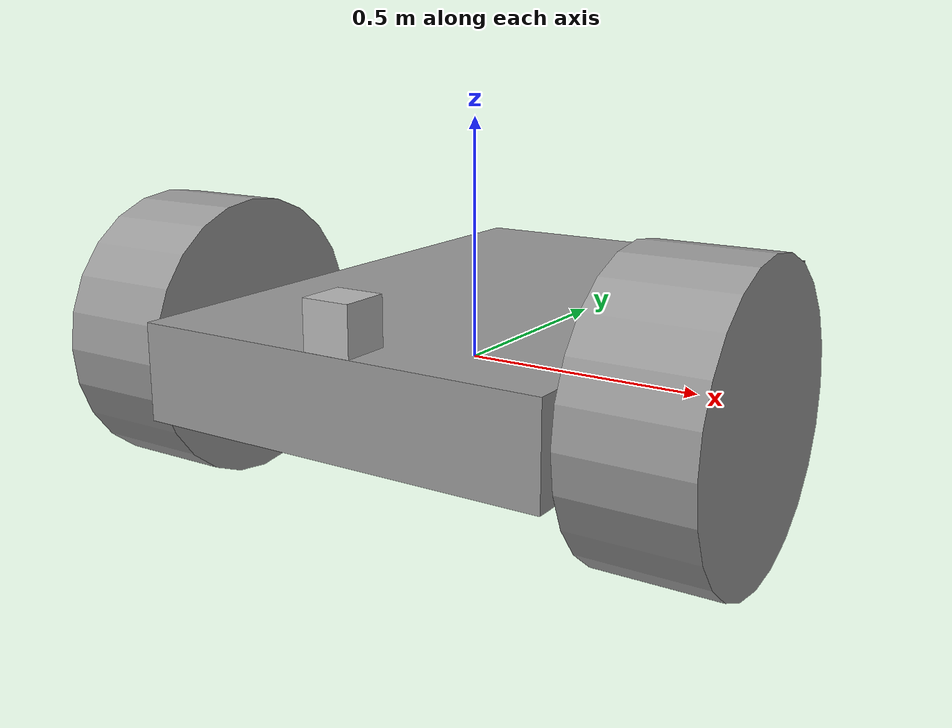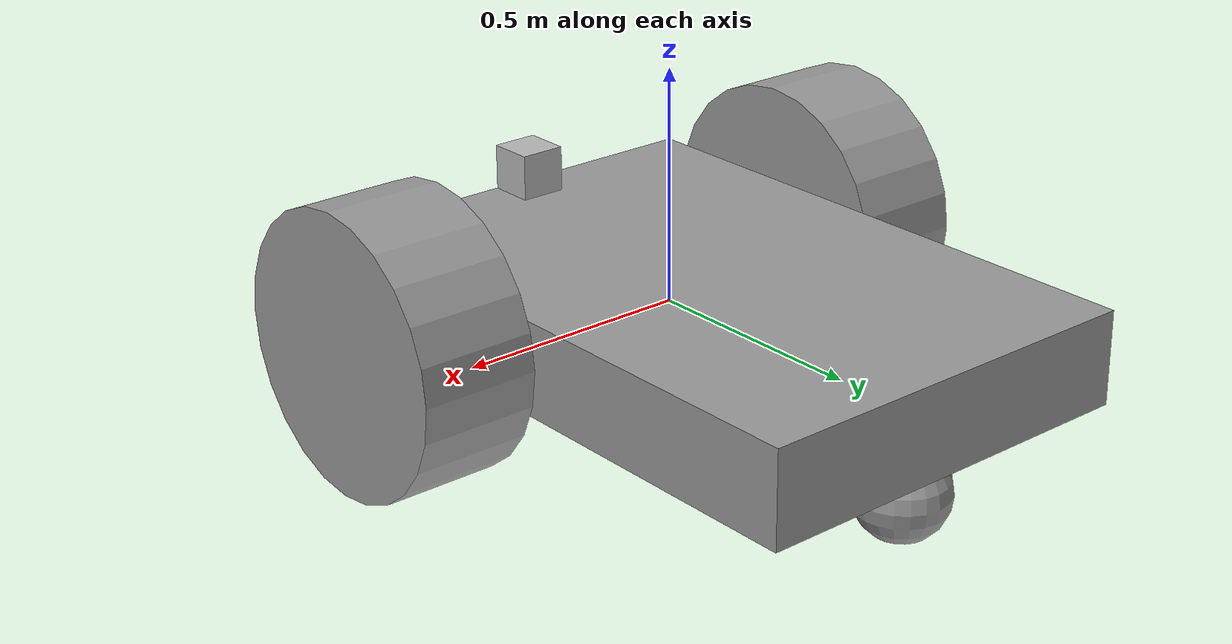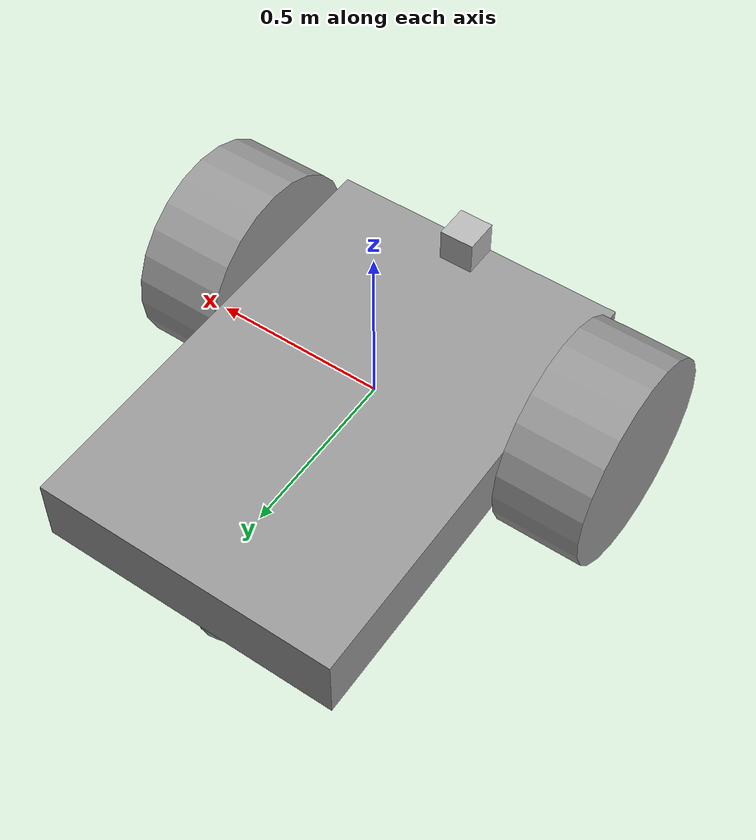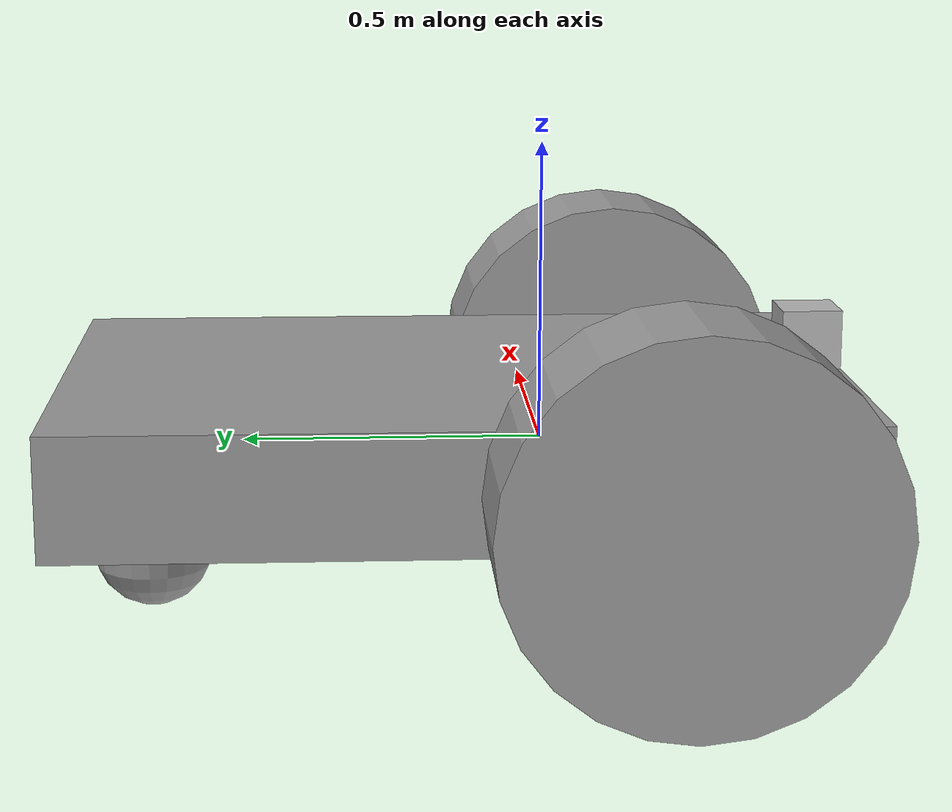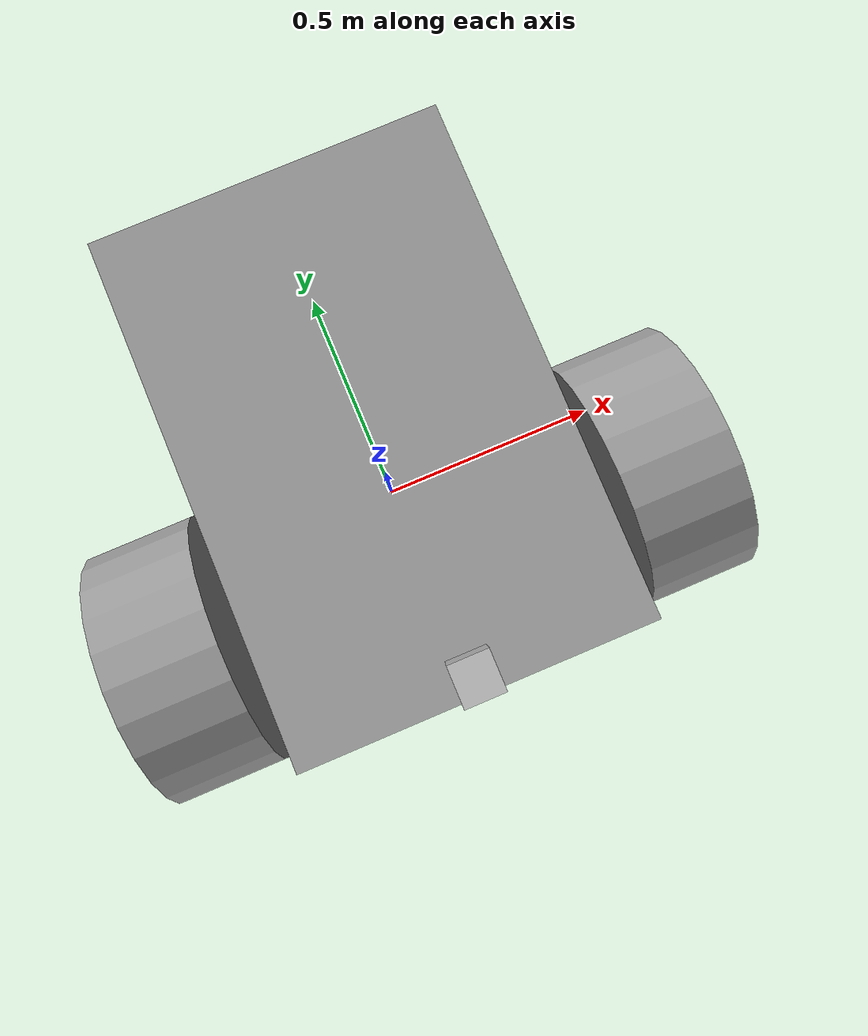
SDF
<?xml version='1.0'?>
<sdf version='1.7'>
  <model name='self_driving_car'>
    <link name='link_0'>
      <inertial>
        <mass>0.253999</mass>
        <inertia>
          <ixx>0.0337402</ixx>
          <ixy>0</ixy>
          <ixz>0</ixz>
          <iyy>0.0174586</iyy>
          <iyz>0</iyz>
          <izz>0.048896</izz>
        </inertia>
        <pose>0 0 0 0 -0 0</pose>
      </inertial>
      <pose>0.005787 0.146085 0.020215 0 -0 0</pose>
      <gravity>1</gravity>
      <self_collide>0</self_collide>
      <kinematic>0</kinematic>
      <enable_wind>0</enable_wind>
      <visual name='visual'>
        <pose>0 0 0 0 -0 0</pose>
        <geometry>
          <box>
            <size>0.877737 1.3 0.2</size>
          </box>
        </geometry>
        <material>
          <lighting>1</lighting>
          <script>
            <uri>file://media/materials/scripts/gazebo.material</uri>
            <name>Gazebo/Grey</name>
          </script>
          <shader type='pixel'>
            <normal_map>__default__</normal_map>
          </shader>
          <ambient>0.3 0.3 0.3 1</ambient>
          <diffuse>0.7 0.7 0.7 1</diffuse>
          <specular>0.01 0.01 0.01 1</specular>
          <emissive>0 0 0 1</emissive>
        </material>
        <transparency>0</transparency>
        <cast_shadows>1</cast_shadows>
      </visual>
      <collision name='collision'>
        <laser_retro>0</laser_retro>
        <max_contacts>10</max_contacts>
        <pose>0 0 0 0 -0 0</pose>
        <geometry>
          <box>
            <size>0.877737 1.3 0.2</size>
          </box>
        </geometry>
        <surface>
          <friction>
            <ode>
              <mu>1</mu>
              <mu2>1</mu2>
              <fdir1>0 0 0</fdir1>
              <slip1>0</slip1>
              <slip2>0</slip2>
            </ode>
            <torsional>
              <coefficient>1</coefficient>
              <patch_radius>0</patch_radius>
              <surface_radius>0</surface_radius>
              <use_patch_radius>1</use_patch_radius>
              <ode>
                <slip>0</slip>
              </ode>
            </torsional>
          </friction>
          <bounce>
            <restitution_coefficient>0</restitution_coefficient>
            <threshold>1e+06</threshold>
          </bounce>
          <contact>
            <collide_without_contact>0</collide_without_contact>
            <collide_without_contact_bitmask>1</collide_without_contact_bitmask>
            <collide_bitmask>1</collide_bitmask>
            <ode>
              <soft_cfm>0</soft_cfm>
              <soft_erp>0.2</soft_erp>
              <kp>1e+13</kp>
              <kd>1</kd>
              <max_vel>0.01</max_vel>
              <min_depth>0</min_depth>
            </ode>
            <bullet>
              <split_impulse>1</split_impulse>
              <split_impulse_penetration_threshold>-0.01</split_impulse_penetration_threshold>
              <soft_cfm>0</soft_cfm>
              <soft_erp>0.2</soft_erp>
              <kp>1e+13</kp>
              <kd>1</kd>
            </bullet>
          </contact>
        </surface>
      </collision>
    </link>
    <link name='link_1'>
      <inertial>
        <mass>1</mass>
        <inertia>
          <ixx>0.145833</ixx>
          <ixy>0</ixy>
          <ixz>0</ixz>
          <iyy>0.145833</iyy>
          <iyz>0</iyz>
          <izz>0.125</izz>
        </inertia>
        <pose>0 0 0 0 -0 0</pose>
      </inertial>
      <pose>-0.573139 -0.174313 0.020215 1.5707 0 1.5707</pose>
      <gravity>1</gravity>
      <self_collide>0</self_collide>
      <kinematic>0</kinematic>
      <enable_wind>0</enable_wind>
      <visual name='visual'>
        <pose>0 0 0 0 -0 0</pose>
        <geometry>
          <cylinder>
            <radius>0.3</radius>
            <length>0.25</length>
          </cylinder>
        </geometry>
        <material>
          <lighting>1</lighting>
          <script>
            <uri>file://media/materials/scripts/gazebo.material</uri>
            <name>Gazebo/Grey</name>
          </script>
          <shader type='pixel'>
            <normal_map>__default__</normal_map>
          </shader>
          <ambient>0.3 0.3 0.3 1</ambient>
          <diffuse>0.7 0.7 0.7 1</diffuse>
          <specular>0.01 0.01 0.01 1</specular>
          <emissive>0 0 0 1</emissive>
        </material>
        <transparency>0</transparency>
        <cast_shadows>1</cast_shadows>
      </visual>
      <collision name='collision'>
        <laser_retro>0</laser_retro>
        <max_contacts>10</max_contacts>
        <pose>0 0 0 0 -0 0</pose>
        <geometry>
          <cylinder>
            <radius>0.3</radius>
            <length>0.25</length>
          </cylinder>
        </geometry>
        <surface>
          <friction>
            <ode>
              <mu>1</mu>
              <mu2>1</mu2>
              <fdir1>0 0 0</fdir1>
              <slip1>0</slip1>
              <slip2>0</slip2>
            </ode>
            <torsional>
              <coefficient>1</coefficient>
              <patch_radius>0</patch_radius>
              <surface_radius>0</surface_radius>
              <use_patch_radius>1</use_patch_radius>
              <ode>
                <slip>0</slip>
              </ode>
            </torsional>
          </friction>
          <bounce>
            <restitution_coefficient>0</restitution_coefficient>
            <threshold>1e+06</threshold>
          </bounce>
          <contact>
            <collide_without_contact>0</collide_without_contact>
            <collide_without_contact_bitmask>1</collide_without_contact_bitmask>
            <collide_bitmask>1</collide_bitmask>
            <ode>
              <soft_cfm>0</soft_cfm>
              <soft_erp>0.2</soft_erp>
              <kp>1e+13</kp>
              <kd>1</kd>
              <max_vel>0.01</max_vel>
              <min_depth>0</min_depth>
            </ode>
            <bullet>
              <split_impulse>1</split_impulse>
              <split_impulse_penetration_threshold>-0.01</split_impulse_penetration_threshold>
              <soft_cfm>0</soft_cfm>
              <soft_erp>0.2</soft_erp>
              <kp>1e+13</kp>
              <kd>1</kd>
            </bullet>
          </contact>
        </surface>
      </collision>
    </link>
    <link name='link_1_clone'>
      <inertial>
        <mass>1</mass>
        <inertia>
          <ixx>0.145833</ixx>
          <ixy>0</ixy>
          <ixz>0</ixz>
          <iyy>0.145833</iyy>
          <iyz>0</iyz>
          <izz>0.125</izz>
        </inertia>
        <pose>0 0 0 0 -0 0</pose>
      </inertial>
      <pose>0.569713 -0.174314 0.020215 1.5707 0 1.5707</pose>
      <gravity>1</gravity>
      <self_collide>0</self_collide>
      <kinematic>0</kinematic>
      <enable_wind>0</enable_wind>
      <visual name='visual'>
        <pose>0 0 0 0 -0 0</pose>
        <geometry>
          <cylinder>
            <radius>0.3</radius>
            <length>0.25</length>
          </cylinder>
        </geometry>
        <material>
          <lighting>1</lighting>
          <script>
            <uri>file://media/materials/scripts/gazebo.material</uri>
            <name>Gazebo/Grey</name>
          </script>
          <shader type='pixel'>
            <normal_map>__default__</normal_map>
          </shader>
          <ambient>0.3 0.3 0.3 1</ambient>
          <diffuse>0.7 0.7 0.7 1</diffuse>
          <specular>0.01 0.01 0.01 1</specular>
          <emissive>0 0 0 1</emissive>
        </material>
        <transparency>0</transparency>
        <cast_shadows>1</cast_shadows>
      </visual>
      <collision name='collision'>
        <laser_retro>0</laser_retro>
        <max_contacts>10</max_contacts>
        <pose>0 0 0 0 -0 0</pose>
        <geometry>
          <cylinder>
            <radius>0.3</radius>
            <length>0.25</length>
          </cylinder>
        </geometry>
        <surface>
          <friction>
            <ode>
              <mu>1</mu>
              <mu2>1</mu2>
              <fdir1>0 0 0</fdir1>
              <slip1>0</slip1>
              <slip2>0</slip2>
            </ode>
            <torsional>
              <coefficient>1</coefficient>
              <patch_radius>0</patch_radius>
              <surface_radius>0</surface_radius>
              <use_patch_radius>1</use_patch_radius>
              <ode>
                <slip>0</slip>
              </ode>
            </torsional>
          </friction>
          <bounce>
            <restitution_coefficient>0</restitution_coefficient>
            <threshold>1e+06</threshold>
          </bounce>
          <contact>
            <collide_without_contact>0</collide_without_contact>
            <collide_without_contact_bitmask>1</collide_without_contact_bitmask>
            <collide_bitmask>1</collide_bitmask>
            <ode>
              <soft_cfm>0</soft_cfm>
              <soft_erp>0.2</soft_erp>
              <kp>1e+13</kp>
              <kd>1</kd>
              <max_vel>0.01</max_vel>
              <min_depth>0</min_depth>
            </ode>
            <bullet>
              <split_impulse>1</split_impulse>
              <split_impulse_penetration_threshold>-0.01</split_impulse_penetration_threshold>
              <soft_cfm>0</soft_cfm>
              <soft_erp>0.2</soft_erp>
              <kp>1e+13</kp>
              <kd>1</kd>
            </bullet>
          </contact>
        </surface>
      </collision>
    </link>
    <link name='link_2'>
      <inertial>
        <mass>1</mass>
        <inertia>
          <ixx>0.1</ixx>
          <ixy>0</ixy>
          <ixz>0</ixz>
          <iyy>0.1</iyy>
          <iyz>0</iyz>
          <izz>0.1</izz>
        </inertia>
        <pose>0 0 0 0 -0 0</pose>
      </inertial>
      <pose>-0.014213 0.656085 -0.179785 0 -0 0</pose>
      <gravity>1</gravity>
      <self_collide>0</self_collide>
      <kinematic>0</kinematic>
      <enable_wind>0</enable_wind>
      <visual name='visual'>
        <pose>0 0 0 0 -0 0</pose>
        <geometry>
          <sphere>
            <radius>0.1</radius>
          </sphere>
        </geometry>
        <material>
          <lighting>1</lighting>
          <script>
            <uri>file://media/materials/scripts/gazebo.material</uri>
            <name>Gazebo/Grey</name>
          </script>
          <shader type='pixel'>
            <normal_map>__default__</normal_map>
          </shader>
          <ambient>0.3 0.3 0.3 1</ambient>
          <diffuse>0.7 0.7 0.7 1</diffuse>
          <specular>0.01 0.01 0.01 1</specular>
          <emissive>0 0 0 1</emissive>
        </material>
        <transparency>0</transparency>
        <cast_shadows>1</cast_shadows>
      </visual>
      <collision name='collision'>
        <laser_retro>0</laser_retro>
        <max_contacts>10</max_contacts>
        <pose>0 0 0 0 -0 0</pose>
        <geometry>
          <sphere>
            <radius>0.1</radius>
          </sphere>
        </geometry>
        <surface>
          <friction>
            <ode>
              <mu>1</mu>
              <mu2>1</mu2>
              <fdir1>0 0 0</fdir1>
              <slip1>0</slip1>
              <slip2>0</slip2>
            </ode>
            <torsional>
              <coefficient>1</coefficient>
              <patch_radius>0</patch_radius>
              <surface_radius>0</surface_radius>
              <use_patch_radius>1</use_patch_radius>
              <ode>
                <slip>0</slip>
              </ode>
            </torsional>
          </friction>
          <bounce>
            <restitution_coefficient>0</restitution_coefficient>
            <threshold>1e+06</threshold>
          </bounce>
          <contact>
            <collide_without_contact>0</collide_without_contact>
            <collide_without_contact_bitmask>1</collide_without_contact_bitmask>
            <collide_bitmask>1</collide_bitmask>
            <ode>
              <soft_cfm>0</soft_cfm>
              <soft_erp>0.2</soft_erp>
              <kp>1e+13</kp>
              <kd>1</kd>
              <max_vel>0.01</max_vel>
              <min_depth>0</min_depth>
            </ode>
            <bullet>
              <split_impulse>1</split_impulse>
              <split_impulse_penetration_threshold>-0.01</split_impulse_penetration_threshold>
              <soft_cfm>0</soft_cfm>
              <soft_erp>0.2</soft_erp>
              <kp>1e+13</kp>
              <kd>1</kd>
            </bullet>
          </contact>
        </surface>
      </collision>
    </link>
    <model name='depth_camera'>
      <link name='link'>
        <pose>0 0 0.05 0 -0 0</pose>
        <inertial>
          <mass>0.1</mass>
          <inertia>
            <ixx>0.000166667</ixx>
            <iyy>0.000166667</iyy>
            <izz>0.000166667</izz>
            <ixy>0</ixy>
            <ixz>0</ixz>
            <iyz>0</iyz>
          </inertia>
          <pose>0 0 0 0 -0 0</pose>
        </inertial>
        <collision name='collision'>
          <geometry>
            <box>
              <size>0.1 0.1 0.1</size>
            </box>
          </geometry>
          <max_contacts>10</max_contacts>
          <surface>
            <contact>
              <ode/>
            </contact>
            <bounce/>
            <friction>
              <torsional>
                <ode/>
              </torsional>
              <ode/>
            </friction>
          </surface>
        </collision>
        <visual name='visual'>
          <geometry>
            <box>
              <size>0.1 0.1 0.1</size>
            </box>
          </geometry>
        </visual>
        <sensor name='camera' type='depth'>
          <camera>
            <horizontal_fov>1.047</horizontal_fov>
            <image>
              <width>320</width>
              <height>240</height>
            </image>
            <clip>
              <near>0.1</near>
              <far>100</far>
            </clip>
          </camera>
          <always_on>1</always_on>
          <update_rate>30</update_rate>
          <visualize>1</visualize>
        </sensor>
        <self_collide>0</self_collide>
        <enable_wind>0</enable_wind>
        <kinematic>0</kinematic>
      </link>
      <pose>0.011852 -0.453543 0.11914 -1.6e-05 1e-06 3.14159</pose>
    </model>
    <joint name='link_0_JOINT_0' type='revolute'>
      <parent>link_0</parent>
      <child>link_1</child>
      <pose>0 0 0 0 -0 0</pose>
      <axis>
        <xyz>0 0 1</xyz>
        <limit>
          <lower>-1.79769e+308</lower>
          <upper>1.79769e+308</upper>
          <effort>-1</effort>
          <velocity>-1</velocity>
        </limit>
        <dynamics>
          <spring_reference>0</spring_reference>
          <spring_stiffness>0</spring_stiffness>
          <damping>0</damping>
          <friction>0</friction>
        </dynamics>
      </axis>
      <physics>
        <ode>
          <limit>
            <cfm>0</cfm>
            <erp>0.2</erp>
          </limit>
          <suspension>
            <cfm>0</cfm>
            <erp>0.2</erp>
          </suspension>
        </ode>
      </physics>
    </joint>
    <joint name='link_0_JOINT_1' type='revolute'>
      <parent>link_0</parent>
      <child>link_1_clone</child>
      <pose>0 0 0 0 -0 0</pose>
      <axis>
        <xyz>0 0 1</xyz>
        <limit>
          <lower>-1.79769e+308</lower>
          <upper>1.79769e+308</upper>
          <effort>-1</effort>
          <velocity>-1</velocity>
        </limit>
        <dynamics>
          <spring_reference>0</spring_reference>
          <spring_stiffness>0</spring_stiffness>
          <damping>0</damping>
          <friction>0</friction>
        </dynamics>
      </axis>
      <physics>
        <ode>
          <limit>
            <cfm>0</cfm>
            <erp>0.2</erp>
          </limit>
          <suspension>
            <cfm>0</cfm>
            <erp>0.2</erp>
          </suspension>
        </ode>
      </physics>
    </joint>
    <joint name='link_0_JOINT_3' type='ball'>
      <parent>link_0</parent>
      <child>link_2</child>
      <pose>0 0 0 0 -0 0</pose>
      <physics>
        <ode>
          <limit>
            <cfm>0</cfm>
            <erp>0.2</erp>
          </limit>
          <suspension>
            <cfm>0</cfm>
            <erp>0.2</erp>
          </suspension>
        </ode>
      </physics>
    </joint>
    <joint name='link_0_JOINT_5' type='fixed'>
      <parent>link_0</parent>
      <child>depth_camera::link</child>
      <pose>0 0 0 0 -0 0</pose>
      <physics>
        <ode>
          <limit>
            <cfm>0</cfm>
            <erp>0.2</erp>
          </limit>
          <suspension>
            <cfm>0</cfm>
            <erp>0.2</erp>
          </suspension>
        </ode>
      </physics>
    </joint>
    <static>0</static>
    <allow_auto_disable>1</allow_auto_disable>
    <plugin name='depth_camera_plugin' filename='libgazebo_ros_camera.so'/>
  </model>
</sdf>
